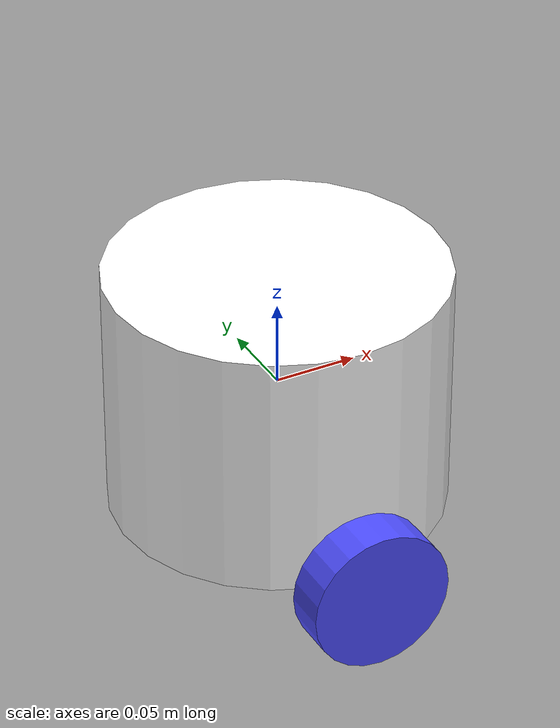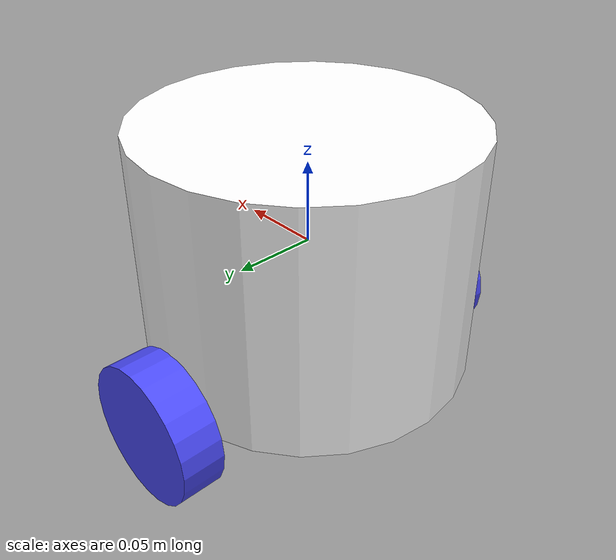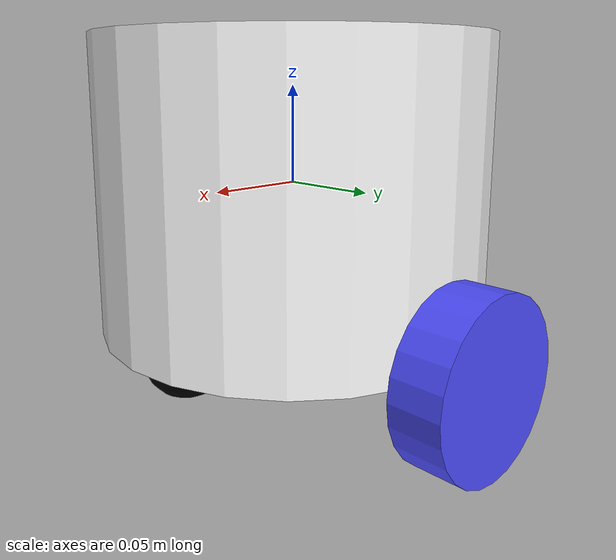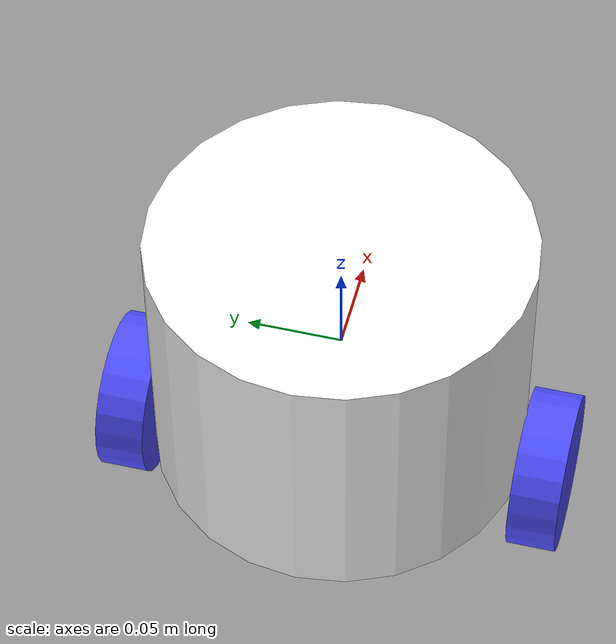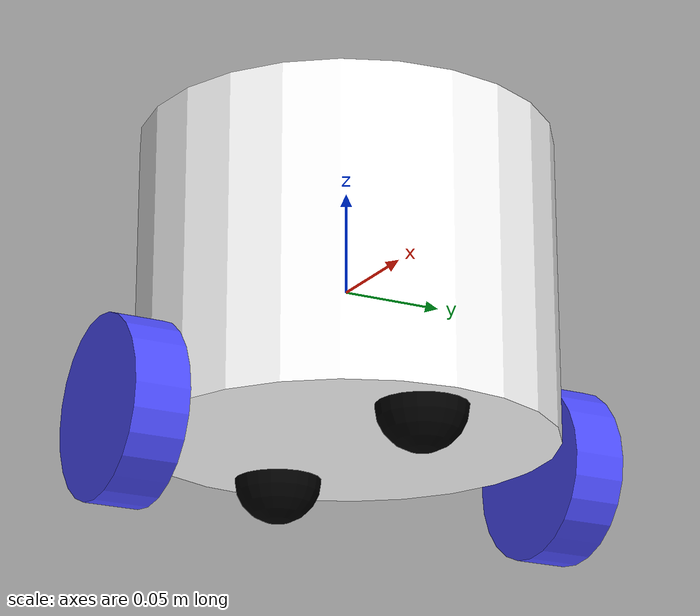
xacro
<?xml version="1.0"?>
<robot xmlns:xacro="http://www.ros.org/wiki/xacro">

    <xacro:include filename="inertial_macros.xacro"/>

    <material name="white">
        <color rgba="1 1 1 1"/>
    </material>

    <material name="orange">
        <color rgba="1 0.3 0.1 1"/>
    </material>

    <material name="blue">
        <color rgba="0.3 0.3 1 1"/>
    </material>

    <material name="black">
        <color rgba="0 0 0 1"/>
    </material>

    <material name="red">
        <color rgba="1 0 0 1"/>
    </material>

    <!-- base link -->
    <link name="base_link">
    </link>

    <!-- Base foot print -->
    <joint name="base_footprint_joint" type="fixed">
        <parent link="base_link"/>
        <child link="base_footprint"/>
        <origin xyz="0 0 0" rpy="0 0 0"/>
    </joint>

    <link name="base_footprint">
    </link>

    <!-- Chassis -->
    <joint name="chassis_joint" type="fixed">
        <parent link="base_link"/>
        <child link="chassis"/>
        <origin xyz="0 0 0" rpy="0 0 0"/>
    </joint>

    <link name="chassis">
        <visual>
            <origin xyz="0 0 0"/>
            <geometry>
                <cylinder radius="0.1" length="0.15"/>
            </geometry>
            <material name="white"/>
        </visual>

        <collision>
            <origin xyz="0 0 0"/>
            <geometry>
                <cylinder radius="0.1" length="0.15"/>
            </geometry>
        </collision>

        <xacro:inertial_cylinder mass="0.5" radius="0.1" length="0.15">
            <origin xyz="0.0 0.0 0.0" rpy="0.0 0.0 0.0"/>
        </xacro:inertial_cylinder>
    </link>

    <gazebo reference="chassis">
        <material>Gazebo/White</material>
    </gazebo>

    <!-- Left wheel -->
    <joint name="left_wheel_joint" type="continuous">
        <parent link="base_link"/>
        <child link="left_wheel"/>
        <origin xyz="0.0 0.1125 -0.075" rpy="-${pi/2} 0 0" />
        <axis xyz="0.0 0.0 1"/>
    </joint>

    <link name="left_wheel">
        <visual>
            <origin xyz="0 0 0"/>
            <geometry>
                <cylinder radius="0.0425" length="0.026"/>
            </geometry>
            <material name="blue"/>
        </visual>

        <collision>
            <origin xyz="0 0 0"/>
            <geometry>
                <sphere radius="0.0425"/>
            </geometry>
        </collision>

        <xacro:inertial_cylinder mass="0.1" radius="0.0425" length="0.026">
            <origin xyz="0.0 0.0 0.0" rpy="0.0 0.0 0.0"/>
        </xacro:inertial_cylinder>
    </link>

    <gazebo reference="left_wheel">
        <material>Gazebo/Blue</material>
    </gazebo>

    <!-- Right wheel -->
    <joint name="right_wheel_joint" type="continuous">
        <parent link="base_link"/>
        <child link="right_wheel"/>
        <origin xyz="0.0 -0.1125 -0.075" rpy="${pi/2} 0 0" />
        <axis xyz="0.0 0.0 -1"/>
    </joint>

    <link name="right_wheel">
        <visual>
            <origin xyz="0 0 0"/>
            <geometry>
                <cylinder radius="0.0425" length="0.026"/>
            </geometry>
            <material name="blue"/>
        </visual>

        <collision>
            <origin xyz="0 0 0"/>
            <geometry>
                <sphere radius="0.0425"/>
            </geometry>
        </collision>

        <xacro:inertial_cylinder mass="0.1" radius="0.0425" length="0.026">
            <origin xyz="0.0 0.0 0.0" rpy="0.0 0.0 0.0"/>
        </xacro:inertial_cylinder>
    </link>

    <gazebo reference="right_wheel">
        <material>Gazebo/Blue</material>
    </gazebo>

    <!-- Front Castor wheel -->
    <joint name="front_castor_wheel_joint" type="fixed">
        <parent link="chassis"/>
        <child link="front_castor_wheel"/>
        <origin xyz="0.07 0.0 -0.075" rpy="0.0 0.0 0.0"/>
    </joint>

    <link name="front_castor_wheel">
        <visual>
            <origin xyz="0 0 0"/>
            <geometry>
                <sphere radius="0.02125"/>
            </geometry>
            <material name="black"/>
        </visual>

        <collision>
            <origin xyz="0 0 0"/>
            <geometry>
                <sphere radius="0.0425"/>
            </geometry>
        </collision>

        <xacro:inertial_sphere mass="0.1" radius="0.0425">
            <origin xyz="0.0 0.0 0.0" rpy="0.0 0.0 0.0"/>
        </xacro:inertial_sphere>
    </link>

    <gazebo reference="front_castor_wheel">
        <material>Gazebo/Black</material>
        <mu1 value="0.001"/>
        <mu2 value="0.001"/>
    </gazebo>

    <!-- Back Castor wheel -->
    <joint name="back_castor_wheel_joint" type="fixed">
        <parent link="chassis"/>
        <child link="back_castor_wheel"/>
        <origin xyz="-0.07 0.0 -0.075" rpy="0.0 0.0 0.0"/>
    </joint>

    <link name="back_castor_wheel">
        <visual>
            <origin xyz="0 0 0"/>
            <geometry>
                <sphere radius="0.02125"/>
            </geometry>
            <material name="black"/>
        </visual>

        <collision>
            <origin xyz="0 0 0"/>
            <geometry>
                <sphere radius="0.0425"/>
            </geometry>
        </collision>

        <xacro:inertial_sphere mass="0.1" radius="0.0425">
            <origin xyz="0.0 0.0 0.0" rpy="0.0 0.0 0.0"/>
        </xacro:inertial_sphere>
    </link>

    <gazebo reference="back_castor_wheel">
        <material>Gazebo/Black</material>
        <mu1 value="0.001"/>
        <mu2 value="0.001"/>
    </gazebo>

</robot>
